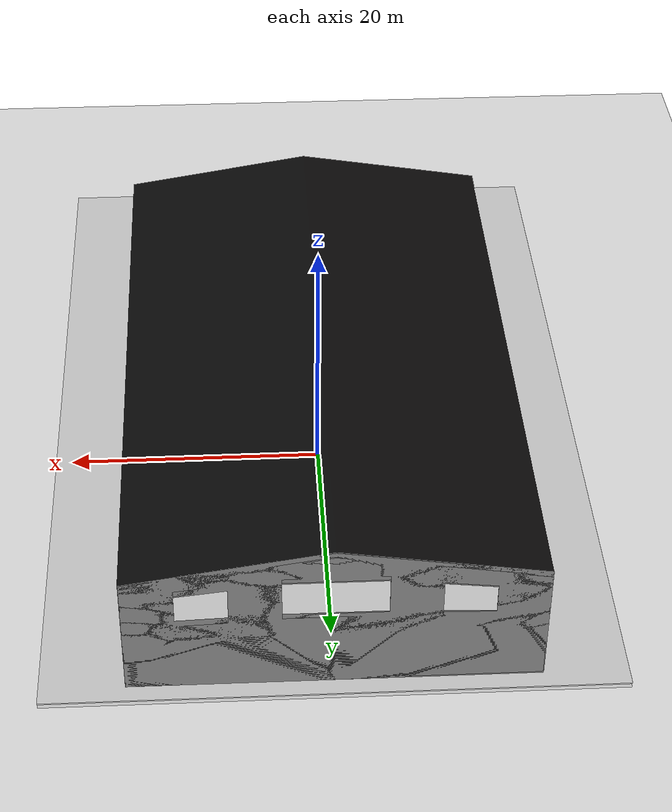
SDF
<?xml version="1.0" ?>
<sdf version="1.8">
  <world name="my_world">
    <plugin
      filename="gz-sim-physics-system"
      name="gz::sim::systems::Physics">
    </plugin>
    <plugin
      filename="gz-sim-sensors-system"
      name="gz::sim::systems::Sensors">
      <render_engine>ogre2</render_engine>
    </plugin>
    <plugin
      filename="gz-sim-scene-broadcaster-system"
      name="gz::sim::systems::SceneBroadcaster">
    </plugin>
    <plugin
      filename="gz-sim-user-commands-system"
      name="gz::sim::systems::UserCommands">
    </plugin>

    <plugin filename="gz-sim-imu-system"
        name="gz::sim::systems::Imu">
    </plugin>

    <light name="sun2" type="directional">
      <cast_shadows>true</cast_shadows>
      <pose>0 0 10 0 0 0</pose>
      <diffuse>0.8 0.8 0.8 1</diffuse>
      <specular>0.2 0.2 0.2 1</specular>
      <attenuation>
        <range>1000</range>
        <constant>0.9</constant>
        <linear>0.01</linear>
        <quadratic>0.001</quadratic>
      </attenuation>
      <direction>-0.5 0.1 -0.9</direction>
    </light>

    <model name="ground_plane">
      <static>true</static>
      <link name="link">
        <collision name="collision">
          <geometry>
            <plane>
              <normal>0 0 1</normal>
              <size>100 100</size>
            </plane>
          </geometry>
        </collision>
        <visual name="visual">
          <geometry>
            <plane>
              <normal>0 0 1</normal>
              <size>100 100</size>
            </plane>
          </geometry>
          <material>
            <ambient>0.8 0.8 0.8 1</ambient>
            <diffuse>0.8 0.8 0.8 1</diffuse>
            <specular>0.8 0.8 0.8 1</specular>
          </material>
        </visual>
      </link>
    </model>

    <model name="saye">
      <self_collide>true</self_collide>
      <pose>0 0 0.35 0 0 0</pose>
      <include merge="true">
          <uri>model://saye_description/models/saye/model.sdf</uri>
      </include>

       <plugin
        filename="gz-sim-joint-state-publisher-system"
        name="gz::sim::systems::JointStatePublisher">
      </plugin>

      <plugin
        filename="gz-sim-pose-publisher-system"
        name="gz::sim::systems::PosePublisher">
        <publish_link_pose>true</publish_link_pose>
        <use_pose_vector_msg>true</use_pose_vector_msg>
        <static_publisher>false</static_publisher>
        <static_update_frequency>1</static_update_frequency>
      </plugin>

      <plugin
          filename="gz-sim-odometry-publisher-system"
          name="gz::sim::systems::OdometryPublisher">
          <odom_frame>odom</odom_frame>
          <robot_base_frame>saye</robot_base_frame>
      </plugin>
    </model>

    <include>
      <name>warehouse</name>
      <pose>0 0 -0.09 0 0 0</pose>
      <uri>model://saye_description/worlds/warehouse/model.sdf</uri>
    </include>

  </world>
</sdf>

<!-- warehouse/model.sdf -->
<sdf version="1.7">
    <model name="warehouse">
        <pose>0 0 0 0 0 0</pose>
        <self_collide>false</self_collide>
        <!-- BASE_LINK FRAME -->
        <link name="warehouse_base">
            <pose>0 0 0 0 0 0</pose>
            <collision name="warehouse_collision">
                <pose>0 0 0 0 0 0</pose>
                <geometry>
                    <mesh>
                        <scale>1 1 1</scale>
                        <uri>meshes/warehouse_colision.stl</uri>
                    </mesh>
                </geometry>
            </collision>
            <visual name="warehouse_visual">
                <pose>0 0 0 0 0 0</pose>
                <geometry>
                    <mesh>
                        <scale>1 1 1</scale>
                        <uri>meshes/warehouse.dae</uri>
                    </mesh>
                </geometry>
            </visual>
            <visual name="drop_area_visual">
                <pose>0 0 0.101 0 0 0</pose>
                <geometry>
                    <mesh>
                        <scale>1 1 1</scale>
                        <uri>meshes/warehouse.dae</uri>
                        <submesh>
                            <name>drop1</name>
                            <center>true</center>
                        </submesh>
                    </mesh>
                </geometry>
            </visual>
        </link>
        <static>1</static>
    </model>
</sdf>
